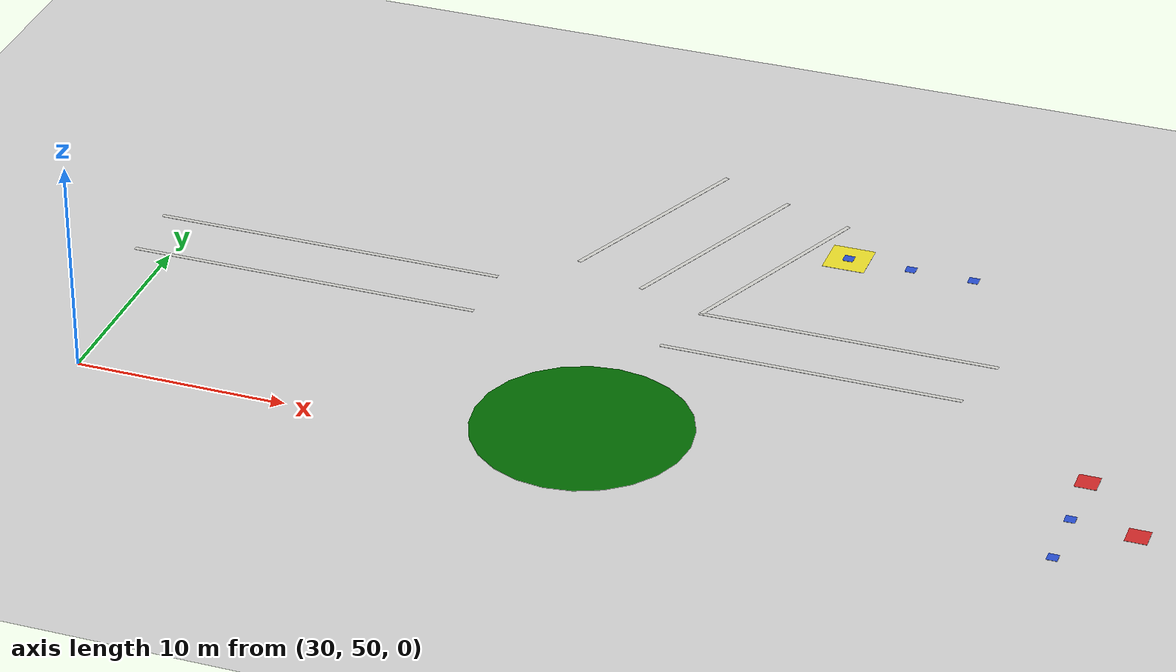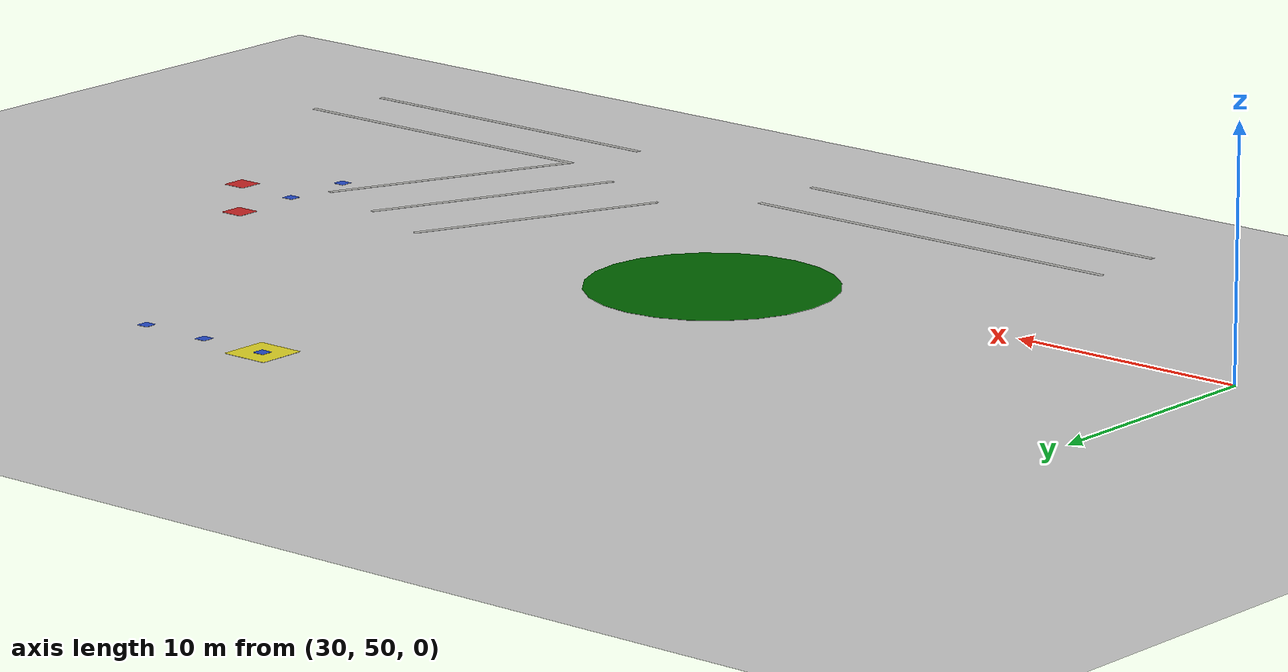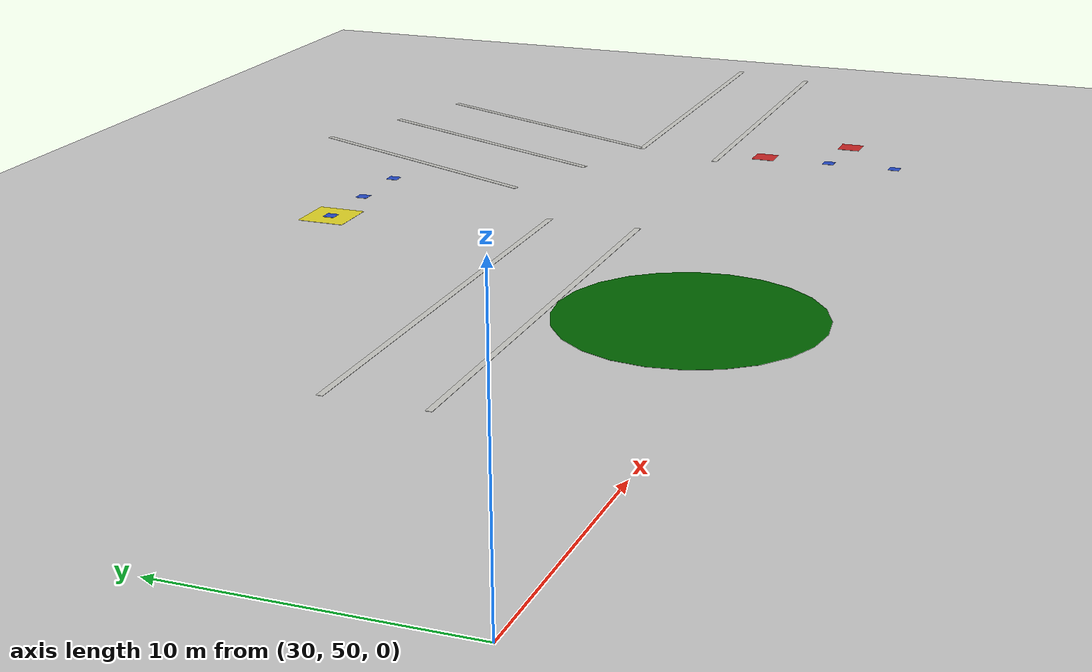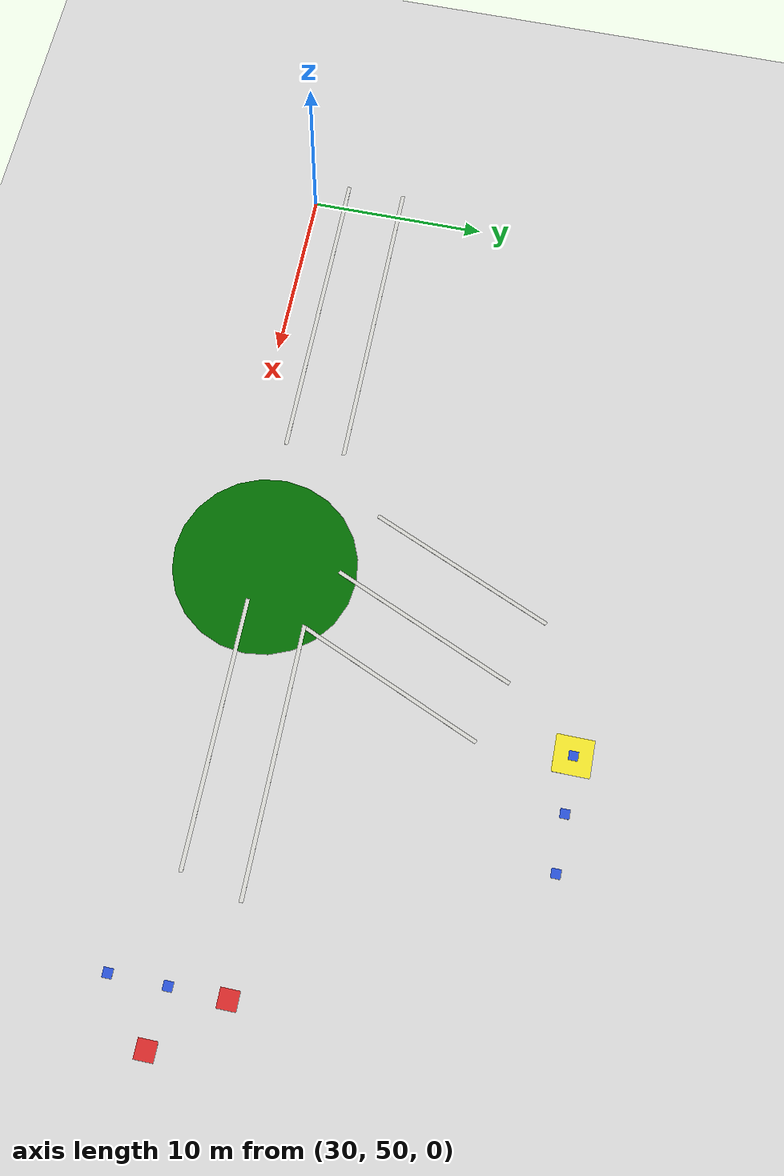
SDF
<sdf version="1.6">
 <world name="default">
  <model name="ground_plane">
   <static>1</static>
   <link name="link">
    <collision name="collision">
     <geometry><plane><normal>0 0 1</normal><size>100 100</size></plane></geometry>
     <surface><friction><ode><mu>100</mu><mu2>50</mu2></ode></friction></surface>
    </collision>
    <visual name="visual">
     <cast_shadows>0</cast_shadows>
     <geometry><plane><normal>0 0 1</normal><size>100 100</size></plane></geometry>
     <material>
      <script><uri>file://media/materials/scripts/gazebo.material</uri><name>Gazebo/Grey</name></script>
     </material>
    </visual>
   </link>
  </model>
  <model name="my_objectT2">
   <link name="my_box">
    <inertial>
     <mass>1</mass>
     <inertia><ixx>1</ixx><ixy>0</ixy><ixz>0</ixz><iyy>100</iyy><iyz>0</iyz><izz>1</izz></inertia>
    </inertial>
    <collision name="my_box_collision"><geometry><box><size>2 2 0.01</size></box></geometry></collision>
    <visual name="my_box_visual">
     <geometry><box><size>2 2 0.01</size></box></geometry>
     <material>
      <script><name>Gazebo/Yellow</name><uri>file://media/materials/scripts/gazebo.material</uri></script>
     </material>
    </visual>
   </link>
   <pose>60.0006 69.9971 0.105 0 -0 2.9e-05</pose>
  </model>
  <model name="my_objecteg2w1">
   <link name="my_box">
    <inertial>
     <mass>1</mass>
     <inertia><ixx>1</ixx><ixy>0</ixy><ixz>0</ixz><iyy>100</iyy><iyz>0</iyz><izz>1</izz></inertia>
    </inertial>
    <collision name="my_box_collision"><geometry><box><size>1 1 0.01</size></box></geometry></collision>
    <visual name="my_box_visual">
     <geometry><box><size>1 1 0.01</size></box></geometry>
     <material>
      <script><name>Gazebo/Red</name><uri>file://media/materials/scripts/gazebo.material</uri></script>
     </material>
    </visual>
   </link>
   <pose>78 52.2 0.104991 0 -0 0</pose>
  </model>
  <model name="my_objecteg2w2">
   <link name="my_box">
    <inertial>
     <mass>1</mass>
     <inertia><ixx>1</ixx><ixy>0</ixy><ixz>0</ixz><iyy>100</iyy><iyz>0</iyz><izz>1</izz></inertia>
    </inertial>
    <collision name="my_box_collision"><geometry><box><size>1 1 0.01</size></box></geometry></collision>
    <visual name="my_box_visual">
     <geometry><box><size>1 1 0.01</size></box></geometry>
     <material>
      <script><name>Gazebo/Red</name><uri>file://media/materials/scripts/gazebo.material</uri></script>
     </material>
    </visual>
   </link>
   <pose>75 55.5 0.104998 0 -0 0</pose>
  </model>
  <model name="my_objectg5w1">
   <link name="my_box">
    <inertial>
     <mass>1</mass>
     <inertia><ixx>1</ixx><ixy>0</ixy><ixz>0</ixz><iyy>100</iyy><iyz>0</iyz><izz>1</izz></inertia>
    </inertial>
    <collision name="my_box_collision"><geometry><box><size>0.5 0.5 0.01</size></box></geometry></collision>
    <visual name="my_box_visual">
     <geometry><box><size>0.5 0.5 0.01</size></box></geometry>
     <material>
      <script><name>Gazebo/Blue</name><uri>file://media/materials/scripts/gazebo.material</uri></script>
     </material>
    </visual>
   </link>
   <pose>74.992 52.5122 0.105001 3e-06 1e-06 -0.000576</pose>
  </model>
  <model name="my_objectg5w2">
   <link name="my_box">
    <inertial>
     <mass>1</mass>
     <inertia><ixx>1</ixx><ixy>0</ixy><ixz>0</ixz><iyy>100</iyy><iyz>0</iyz><izz>1</izz></inertia>
    </inertial>
    <collision name="my_box_collision"><geometry><box><size>0.5 0.5 0.01</size></box></geometry></collision>
    <visual name="my_box_visual">
     <geometry><box><size>0.5 0.5 0.01</size></box></geometry>
     <material>
      <script><name>Gazebo/Blue</name><uri>file://media/materials/scripts/gazebo.material</uri></script>
     </material>
    </visual>
   </link>
   <pose>74.9924 49.5074 0.11502 -8.6e-05 -7e-06 -0.001803</pose>
  </model>
  <model name="my_objectg6w1">
   <link name="my_box">
    <inertial>
     <mass>1</mass>
     <inertia><ixx>1</ixx><ixy>0</ixy><ixz>0</ixz><iyy>100</iyy><iyz>0</iyz><izz>1</izz></inertia>
    </inertial>
    <collision name="my_box_collision"><geometry><box><size>0.5 0.5 0.01</size></box></geometry></collision>
    <visual name="my_box_visual">
     <geometry><box><size>0.5 0.5 0.01</size></box></geometry>
     <material>
      <script><name>Gazebo/Blue</name><uri>file://media/materials/scripts/gazebo.material</uri></script>
     </material>
    </visual>
   </link>
   <pose>59.9923 70.0121 0.115001 0 -2e-06 -0.002283</pose>
  </model>
  <model name="my_objectg6w2">
   <link name="my_box">
    <inertial>
     <mass>1</mass>
     <inertia><ixx>1</ixx><ixy>0</ixy><ixz>0</ixz><iyy>100</iyy><iyz>0</iyz><izz>1</izz></inertia>
    </inertial>
    <collision name="my_box_collision"><geometry><box><size>0.5 0.5 0.01</size></box></geometry></collision>
    <visual name="my_box_visual">
     <geometry><box><size>0.5 0.5 0.01</size></box></geometry>
     <material>
      <script><name>Gazebo/Blue</name><uri>file://media/materials/scripts/gazebo.material</uri></script>
     </material>
    </visual>
   </link>
   <pose>62.9903 70.0147 0.105004 0 -1.5e-05 -0.000336</pose>
  </model>
  <model name="my_objectg6w3">
   <link name="my_box">
    <inertial>
     <mass>1</mass>
     <inertia><ixx>1</ixx><ixy>0</ixy><ixz>0</ixz><iyy>100</iyy><iyz>0</iyz><izz>1</izz></inertia>
    </inertial>
    <collision name="my_box_collision"><geometry><box><size>0.5 0.5 0.01</size></box></geometry></collision>
    <visual name="my_box_visual">
     <geometry><box><size>0.5 0.5 0.01</size></box></geometry>
     <material>
      <script><name>Gazebo/Blue</name><uri>file://media/materials/scripts/gazebo.material</uri></script>
     </material>
    </visual>
   </link>
   <pose>65.9897 70.0155 0.104996 1.9e-05 2e-06 -0.000672</pose>
  </model>
  <model name="359_0">
   <link name="Wall_20">
    <gravity>0</gravity>
    <inertial>
     <mass>1</mass>
     <inertia><ixx>1</ixx><ixy>0</ixy><ixz>0</ixz><iyy>1</iyy><iyz>0</iyz><izz>1</izz></inertia>
    </inertial>
    <visual name="Wall_20_Visual">
     <pose>0 0 5 0 -0 0</pose>
     <geometry><box><size>16.1 0.2 0.01</size></box></geometry>
     <material>
      <script><uri>file://media/materials/scripts/gazebo.material</uri><name>Gazebo/CeilingTiled</name></script>
      <ambient>0.435 0.796 0.675 1</ambient>
      <diffuse>1 1 1 1</diffuse>
      <specular>0 0 0 1</specular>
      <emissive>1 1 0 1</emissive>
      <shader type="vertex"><normal_map>__default__</normal_map></shader>
     </material>
    </visual>
    <collision name="Wall_20_Collision">
     <pose>0 0 1.25 0 -0 0</pose>
     <geometry><box><size>16.1 0.001 2.5</size></box></geometry>
     <surface>
      <friction>
       <ode><mu>1</mu><mu2>1</mu2><fdir1>0 0 0</fdir1><slip1>0</slip1><slip2>0</slip2></ode>
       <torsional>
        <coefficient>1</coefficient>
        <patch_radius>0</patch_radius>
        <surface_radius>0</surface_radius>
        <use_patch_radius>1</use_patch_radius>
        <ode><slip>0</slip></ode>
       </torsional>
      </friction>
      <bounce><restitution_coefficient>0</restitution_coefficient><threshold>1e+06</threshold></bounce>
      <contact>
       <collide_without_contact>0</collide_without_contact>
       <collide_without_contact_bitmask>1</collide_without_contact_bitmask>
       <collide_bitmask>1</collide_bitmask>
       <ode>
        <soft_cfm>0</soft_cfm>
        <soft_erp>0.2</soft_erp>
        <kp>1e+13</kp>
        <kd>1</kd>
        <max_vel>0.01</max_vel>
        <min_depth>0</min_depth>
       </ode>
       <bullet>
        <split_impulse>1</split_impulse>
        <split_impulse_penetration_threshold>-0.01</split_impulse_penetration_threshold>
        <soft_cfm>0</soft_cfm>
        <soft_erp>0.2</soft_erp>
        <kp>1e+13</kp>
        <kd>1</kd>
       </bullet>
      </contact>
     </surface>
    </collision>
   </link>
   <static>1</static>
   <pose>40 52.5 0 0 -0 0</pose>
  </model>
  <model name="359_clone_1">
   <link name="Wall_20">
    <gravity>0</gravity>
    <inertial>
     <mass>1</mass>
     <inertia><ixx>1</ixx><ixy>0</ixy><ixz>0</ixz><iyy>1</iyy><iyz>0</iyz><izz>1</izz></inertia>
    </inertial>
    <visual name="Wall_20_Visual">
     <pose>0 0 5 0 -0 0</pose>
     <geometry><box><size>16.1 0.2 0.01</size></box></geometry>
     <material>
      <script><uri>file://media/materials/scripts/gazebo.material</uri><name>Gazebo/CeilingTiled</name></script>
      <ambient>0.435 0.796 0.675 1</ambient>
      <diffuse>1 1 1 1</diffuse>
      <specular>0 0 0 1</specular>
      <emissive>1 1 0 1</emissive>
      <shader type="vertex"><normal_map>__default__</normal_map></shader>
     </material>
    </visual>
    <collision name="Wall_20_Collision">
     <pose>0 0 1.25 0 -0 0</pose>
     <geometry><box><size>16.1 0.001 2.5</size></box></geometry>
     <surface>
      <friction>
       <ode><mu>1</mu><mu2>1</mu2><fdir1>0 0 0</fdir1><slip1>0</slip1><slip2>0</slip2></ode>
       <torsional>
        <coefficient>1</coefficient>
        <patch_radius>0</patch_radius>
        <surface_radius>0</surface_radius>
        <use_patch_radius>1</use_patch_radius>
        <ode><slip>0</slip></ode>
       </torsional>
      </friction>
      <bounce><restitution_coefficient>0</restitution_coefficient><threshold>1e+06</threshold></bounce>
      <contact>
       <collide_without_contact>0</collide_without_contact>
       <collide_without_contact_bitmask>1</collide_without_contact_bitmask>
       <collide_bitmask>1</collide_bitmask>
       <ode>
        <soft_cfm>0</soft_cfm>
        <soft_erp>0.2</soft_erp>
        <kp>1e+13</kp>
        <kd>1</kd>
        <max_vel>0.01</max_vel>
        <min_depth>0</min_depth>
       </ode>
       <bullet>
        <split_impulse>1</split_impulse>
        <split_impulse_penetration_threshold>-0.01</split_impulse_penetration_threshold>
        <soft_cfm>0</soft_cfm>
        <soft_erp>0.2</soft_erp>
        <kp>1e+13</kp>
        <kd>1</kd>
       </bullet>
      </contact>
     </surface>
    </collision>
   </link>
   <static>1</static>
   <pose>39.988 55.5411 0 0 -0 0</pose>
  </model>
  <model name="358_clone_0">
   <link name="Wall_18">
    <gravity>0</gravity>
    <inertial>
     <mass>1</mass>
     <inertia><ixx>1</ixx><ixy>0</ixy><ixz>0</ixz><iyy>1</iyy><iyz>0</iyz><izz>1</izz></inertia>
    </inertial>
    <visual name="Wall_18_Visual">
     <pose>0 0 5 0 -0 0</pose>
     <geometry><box><size>13.45 0.2 0.01</size></box></geometry>
     <material>
      <script><uri>file://media/materials/scripts/gazebo.material</uri><name>Gazebo/CeilingTiled</name></script>
      <ambient>0.435 0.796 0.675 1</ambient>
      <diffuse>1 1 1 1</diffuse>
      <specular>0 0 0 1</specular>
      <emissive>1 1 0 1</emissive>
      <shader type="vertex"><normal_map>__default__</normal_map></shader>
     </material>
    </visual>
    <collision name="Wall_18_Collision">
     <pose>0 0 1.25 0 -0 0</pose>
     <geometry><box><size>13.45 0.001 2.5</size></box></geometry>
     <surface>
      <friction>
       <ode><mu>1</mu><mu2>1</mu2><fdir1>0 0 0</fdir1><slip1>0</slip1><slip2>0</slip2></ode>
       <torsional>
        <coefficient>1</coefficient>
        <patch_radius>0</patch_radius>
        <surface_radius>0</surface_radius>
        <use_patch_radius>1</use_patch_radius>
        <ode><slip>0</slip></ode>
       </torsional>
      </friction>
      <bounce><restitution_coefficient>0</restitution_coefficient><threshold>1e+06</threshold></bounce>
      <contact>
       <collide_without_contact>0</collide_without_contact>
       <collide_without_contact_bitmask>1</collide_without_contact_bitmask>
       <collide_bitmask>1</collide_bitmask>
       <ode>
        <soft_cfm>0</soft_cfm>
        <soft_erp>0.2</soft_erp>
        <kp>1e+13</kp>
        <kd>1</kd>
        <max_vel>0.01</max_vel>
        <min_depth>0</min_depth>
       </ode>
       <bullet>
        <split_impulse>1</split_impulse>
        <split_impulse_penetration_threshold>-0.01</split_impulse_penetration_threshold>
        <soft_cfm>0</soft_cfm>
        <soft_erp>0.2</soft_erp>
        <kp>1e+13</kp>
        <kd>1</kd>
       </bullet>
      </contact>
     </surface>
    </collision>
   </link>
   <static>1</static>
   <pose>64.0856 55.5387 0 0 -0 0</pose>
  </model>
  <model name="358_0">
   <link name="Wall_18">
    <gravity>0</gravity>
    <inertial>
     <mass>1</mass>
     <inertia><ixx>1</ixx><ixy>0</ixy><ixz>0</ixz><iyy>1</iyy><iyz>0</iyz><izz>1</izz></inertia>
    </inertial>
    <visual name="Wall_18_Visual">
     <pose>0 0 5 0 -0 0</pose>
     <geometry><box><size>13.45 0.2 0.01</size></box></geometry>
     <material>
      <script><uri>file://media/materials/scripts/gazebo.material</uri><name>Gazebo/CeilingTiled</name></script>
      <ambient>0.435 0.796 0.675 1</ambient>
      <diffuse>1 1 1 1</diffuse>
      <specular>0 0 0 1</specular>
      <emissive>1 1 0 1</emissive>
      <shader type="vertex"><normal_map>__default__</normal_map></shader>
     </material>
    </visual>
    <collision name="Wall_18_Collision">
     <pose>0 0 1.25 0 -0 0</pose>
     <geometry><box><size>13.45 0.001 2.5</size></box></geometry>
     <surface>
      <friction>
       <ode><mu>1</mu><mu2>1</mu2><fdir1>0 0 0</fdir1><slip1>0</slip1><slip2>0</slip2></ode>
       <torsional>
        <coefficient>1</coefficient>
        <patch_radius>0</patch_radius>
        <surface_radius>0</surface_radius>
        <use_patch_radius>1</use_patch_radius>
        <ode><slip>0</slip></ode>
       </torsional>
      </friction>
      <bounce><restitution_coefficient>0</restitution_coefficient><threshold>1e+06</threshold></bounce>
      <contact>
       <collide_without_contact>0</collide_without_contact>
       <collide_without_contact_bitmask>1</collide_without_contact_bitmask>
       <collide_bitmask>1</collide_bitmask>
       <ode>
        <soft_cfm>0</soft_cfm>
        <soft_erp>0.2</soft_erp>
        <kp>1e+13</kp>
        <kd>1</kd>
        <max_vel>0.01</max_vel>
        <min_depth>0</min_depth>
       </ode>
       <bullet>
        <split_impulse>1</split_impulse>
        <split_impulse_penetration_threshold>-0.01</split_impulse_penetration_threshold>
        <soft_cfm>0</soft_cfm>
        <soft_erp>0.2</soft_erp>
        <kp>1e+13</kp>
        <kd>1</kd>
       </bullet>
      </contact>
     </surface>
    </collision>
   </link>
   <static>1</static>
   <pose>63.3255 52.5112 0 0 -0 0</pose>
  </model>
  <model name="357_clone_0_0">
   <link name="Wall_16">
    <pose>0 -4e-06 0 0 -0 1.16829</pose>
    <gravity>0</gravity>
    <inertial>
     <mass>1</mass>
     <inertia><ixx>1</ixx><ixy>0</ixy><ixz>0</ixz><iyy>1</iyy><iyz>0</iyz><izz>1</izz></inertia>
    </inertial>
    <visual name="Wall_16_Visual">
     <pose>0 0 5 0 -0 0</pose>
     <geometry><box><size>10.0198 0.2 0.01</size></box></geometry>
     <material>
      <script><uri>file://media/materials/scripts/gazebo.material</uri><name>Gazebo/CeilingTiled</name></script>
      <ambient>0.435 0.796 0.675 1</ambient>
      <diffuse>1 1 1 1</diffuse>
      <specular>0 0 0 1</specular>
      <emissive>1 1 0 1</emissive>
      <shader type="vertex"><normal_map>__default__</normal_map></shader>
     </material>
    </visual>
    <collision name="Wall_16_Collision">
     <pose>0 0 1.25 0 -0 0</pose>
     <geometry><box><size>10.0198 0.001 2.5</size></box></geometry>
     <surface>
      <friction>
       <ode><mu>1</mu><mu2>1</mu2><fdir1>0 0 0</fdir1><slip1>0</slip1><slip2>0</slip2></ode>
       <torsional>
        <coefficient>1</coefficient>
        <patch_radius>0</patch_radius>
        <surface_radius>0</surface_radius>
        <use_patch_radius>1</use_patch_radius>
        <ode><slip>0</slip></ode>
       </torsional>
      </friction>
      <bounce><restitution_coefficient>0</restitution_coefficient><threshold>1e+06</threshold></bounce>
      <contact>
       <collide_without_contact>0</collide_without_contact>
       <collide_without_contact_bitmask>1</collide_without_contact_bitmask>
       <collide_bitmask>1</collide_bitmask>
       <ode>
        <soft_cfm>0</soft_cfm>
        <soft_erp>0.2</soft_erp>
        <kp>1e+13</kp>
        <kd>1</kd>
        <max_vel>0.01</max_vel>
        <min_depth>0</min_depth>
       </ode>
       <bullet>
        <split_impulse>1</split_impulse>
        <split_impulse_penetration_threshold>-0.01</split_impulse_penetration_threshold>
        <soft_cfm>0</soft_cfm>
        <soft_erp>0.2</soft_erp>
        <kp>1e+13</kp>
        <kd>1</kd>
       </bullet>
      </contact>
     </surface>
    </collision>
   </link>
   <static>1</static>
   <pose>59.4264 60.1671 0 0 -0 0</pose>
  </model>
  <model name="357_clone_1">
   <link name="Wall_16">
    <pose>0 -4e-06 0 0 -0 1.16829</pose>
    <gravity>0</gravity>
    <inertial>
     <mass>1</mass>
     <inertia><ixx>1</ixx><ixy>0</ixy><ixz>0</ixz><iyy>1</iyy><iyz>0</iyz><izz>1</izz></inertia>
    </inertial>
    <visual name="Wall_16_Visual">
     <pose>0 0 5 0 -0 0</pose>
     <geometry><box><size>10.0198 0.2 0.01</size></box></geometry>
     <material>
      <script><uri>file://media/materials/scripts/gazebo.material</uri><name>Gazebo/CeilingTiled</name></script>
      <ambient>0.435 0.796 0.675 1</ambient>
      <diffuse>1 1 1 1</diffuse>
      <specular>0 0 0 1</specular>
      <emissive>1 1 0 1</emissive>
      <shader type="vertex"><normal_map>__default__</normal_map></shader>
     </material>
    </visual>
    <collision name="Wall_16_Collision">
     <pose>0 0 1.25 0 -0 0</pose>
     <geometry><box><size>10.0198 0.001 2.5</size></box></geometry>
     <surface>
      <friction>
       <ode><mu>1</mu><mu2>1</mu2><fdir1>0 0 0</fdir1><slip1>0</slip1><slip2>0</slip2></ode>
       <torsional>
        <coefficient>1</coefficient>
        <patch_radius>0</patch_radius>
        <surface_radius>0</surface_radius>
        <use_patch_radius>1</use_patch_radius>
        <ode><slip>0</slip></ode>
       </torsional>
      </friction>
      <bounce><restitution_coefficient>0</restitution_coefficient><threshold>1e+06</threshold></bounce>
      <contact>
       <collide_without_contact>0</collide_without_contact>
       <collide_without_contact_bitmask>1</collide_without_contact_bitmask>
       <collide_bitmask>1</collide_bitmask>
       <ode>
        <soft_cfm>0</soft_cfm>
        <soft_erp>0.2</soft_erp>
        <kp>1e+13</kp>
        <kd>1</kd>
        <max_vel>0.01</max_vel>
        <min_depth>0</min_depth>
       </ode>
       <bullet>
        <split_impulse>1</split_impulse>
        <split_impulse_penetration_threshold>-0.01</split_impulse_penetration_threshold>
        <soft_cfm>0</soft_cfm>
        <soft_erp>0.2</soft_erp>
        <kp>1e+13</kp>
        <kd>1</kd>
       </bullet>
      </contact>
     </surface>
    </collision>
   </link>
   <static>1</static>
   <pose>56.275 61.25 0 0 -0 0</pose>
  </model>
  <model name="unit_cylinder_0_3_clone">
   <link name="link">
    <inertial>
     <mass>1</mass>
     <inertia><ixx>0.145833</ixx><ixy>0</ixy><ixz>0</ixz><iyy>0.145833</iyy><iyz>0</iyz><izz>0.125</izz></inertia>
    </inertial>
    <gravity>0</gravity>
    <visual name="visual">
     <geometry><cylinder><radius>5</radius><length>0.01</length></cylinder></geometry>
     <material>
      <script><name>Gazebo/Grey</name><uri>file://media/materials/scripts/gazebo.material</uri></script>
      <ambient>0 0.4 0 0</ambient>
      <diffuse>0 0.4 0 0</diffuse>
      <specular>0 0.41 0 0</specular>
      <emissive>0 0.4 0 0</emissive>
      <shader type="vertex"><normal_map>__default__</normal_map></shader>
     </material>
    </visual>
   </link>
   <static>0</static>
   <pose>53.1292 52.2479 0.2 0 -0 0</pose>
  </model>
  <model name="357_clone_1_clone">
   <link name="Wall_16">
    <pose>0 -4e-06 0 0 -0 1.16829</pose>
    <gravity>0</gravity>
    <inertial>
     <mass>1</mass>
     <inertia><ixx>1</ixx><ixy>0</ixy><ixz>0</ixz><iyy>1</iyy><iyz>0</iyz><izz>1</izz></inertia>
    </inertial>
    <visual name="Wall_16_Visual">
     <pose>0 0 5 0 -0 0</pose>
     <geometry><box><size>10.0198 0.2 0.01</size></box></geometry>
     <material>
      <script><uri>file://media/materials/scripts/gazebo.material</uri><name>Gazebo/CeilingTiled</name></script>
      <ambient>0.435 0.796 0.675 1</ambient>
      <diffuse>1 1 1 1</diffuse>
      <specular>0 0 0 1</specular>
      <emissive>1 1 0 1</emissive>
      <shader type="vertex"><normal_map>__default__</normal_map></shader>
     </material>
    </visual>
    <collision name="Wall_16_Collision">
     <pose>0 0 1.25 0 -0 0</pose>
     <geometry><box><size>10.0198 0.001 2.5</size></box></geometry>
     <surface>
      <friction>
       <ode><mu>1</mu><mu2>1</mu2><fdir1>0 0 0</fdir1><slip1>0</slip1><slip2>0</slip2></ode>
       <torsional>
        <coefficient>1</coefficient>
        <patch_radius>0</patch_radius>
        <surface_radius>0</surface_radius>
        <use_patch_radius>1</use_patch_radius>
        <ode><slip>0</slip></ode>
       </torsional>
      </friction>
      <bounce><restitution_coefficient>0</restitution_coefficient><threshold>1e+06</threshold></bounce>
      <contact>
       <collide_without_contact>0</collide_without_contact>
       <collide_without_contact_bitmask>1</collide_without_contact_bitmask>
       <collide_bitmask>1</collide_bitmask>
       <ode>
        <soft_cfm>0</soft_cfm>
        <soft_erp>0.2</soft_erp>
        <kp>1e+13</kp>
        <kd>1</kd>
        <max_vel>0.01</max_vel>
        <min_depth>0</min_depth>
       </ode>
       <bullet>
        <split_impulse>1</split_impulse>
        <split_impulse_penetration_threshold>-0.01</split_impulse_penetration_threshold>
        <soft_cfm>0</soft_cfm>
        <soft_erp>0.2</soft_erp>
        <kp>1e+13</kp>
        <kd>1</kd>
       </bullet>
      </contact>
     </surface>
    </collision>
   </link>
   <static>1</static>
   <pose>52.9521 62.5487 0 0 -0 0</pose>
  </model>
 </world>
</sdf>
